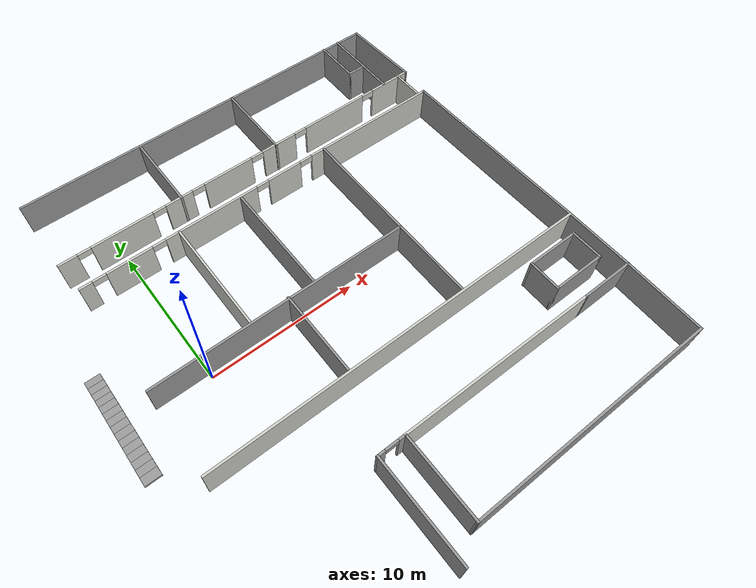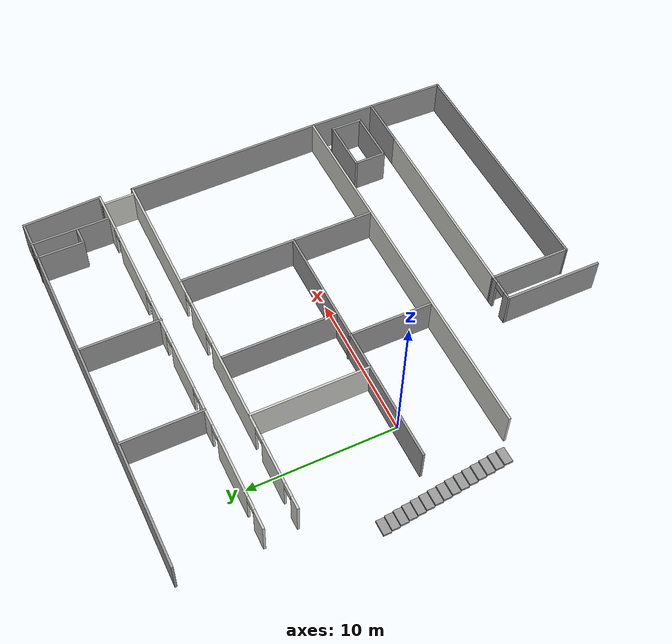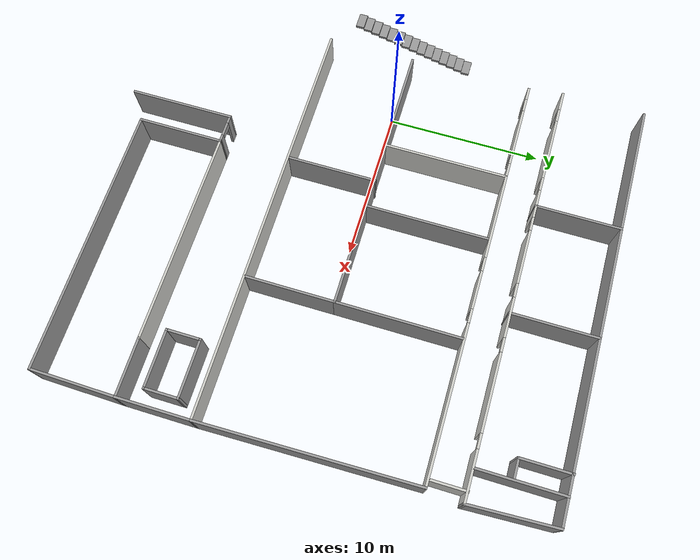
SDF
<sdf version="1.6">
 <model name="b1">
  <pose>-0.20488 -0.299258 0 0 -0 0</pose>
  <link name="Stairs_1">
   <visual name="Stairs_1_Visual_0">
    <pose>-5.30683 4.12843 0.083333 0 -0 0</pose>
    <geometry><box><size>1 0.5427 0.166667</size></box></geometry>
    <material>
     <script><uri>file://media/materials/scripts/gazebo.material</uri><name>Gazebo/Grey</name></script>
     <ambient>1 1 1 1</ambient>
    </material>
   </visual>
   <collision name="Stairs_1_Collision_0">
    <geometry><box><size>1 0.5427 0.166667</size></box></geometry>
    <pose>-5.30683 4.12843 0.083333 0 -0 0</pose>
   </collision>
   <visual name="Stairs_1_Visual_1">
    <pose>-5.30683 3.58574 0.25 0 -0 0</pose>
    <geometry><box><size>1 0.5427 0.166667</size></box></geometry>
    <material>
     <script><uri>file://media/materials/scripts/gazebo.material</uri><name>Gazebo/Grey</name></script>
     <ambient>1 1 1 1</ambient>
    </material>
   </visual>
   <collision name="Stairs_1_Collision_1">
    <geometry><box><size>1 0.5427 0.166667</size></box></geometry>
    <pose>-5.30683 3.58574 0.25 0 -0 0</pose>
   </collision>
   <visual name="Stairs_1_Visual_2">
    <pose>-5.30683 3.04304 0.416667 0 -0 0</pose>
    <geometry><box><size>1 0.5427 0.166667</size></box></geometry>
    <material>
     <script><uri>file://media/materials/scripts/gazebo.material</uri><name>Gazebo/Grey</name></script>
     <ambient>1 1 1 1</ambient>
    </material>
   </visual>
   <collision name="Stairs_1_Collision_2">
    <geometry><box><size>1 0.5427 0.166667</size></box></geometry>
    <pose>-5.30683 3.04304 0.416667 0 -0 0</pose>
   </collision>
   <visual name="Stairs_1_Visual_3">
    <pose>-5.30683 2.50034 0.583333 0 -0 0</pose>
    <geometry><box><size>1 0.5427 0.166667</size></box></geometry>
    <material>
     <script><uri>file://media/materials/scripts/gazebo.material</uri><name>Gazebo/Grey</name></script>
     <ambient>1 1 1 1</ambient>
    </material>
   </visual>
   <collision name="Stairs_1_Collision_3">
    <geometry><box><size>1 0.5427 0.166667</size></box></geometry>
    <pose>-5.30683 2.50034 0.583333 0 -0 0</pose>
   </collision>
   <visual name="Stairs_1_Visual_4">
    <pose>-5.30683 1.95764 0.75 0 -0 0</pose>
    <geometry><box><size>1 0.5427 0.166667</size></box></geometry>
    <material>
     <script><uri>file://media/materials/scripts/gazebo.material</uri><name>Gazebo/Grey</name></script>
     <ambient>1 1 1 1</ambient>
    </material>
   </visual>
   <collision name="Stairs_1_Collision_4">
    <geometry><box><size>1 0.5427 0.166667</size></box></geometry>
    <pose>-5.30683 1.95764 0.75 0 -0 0</pose>
   </collision>
   <visual name="Stairs_1_Visual_5">
    <pose>-5.30683 1.41494 0.916667 0 -0 0</pose>
    <geometry><box><size>1 0.5427 0.166667</size></box></geometry>
    <material>
     <script><uri>file://media/materials/scripts/gazebo.material</uri><name>Gazebo/Grey</name></script>
     <ambient>1 1 1 1</ambient>
    </material>
   </visual>
   <collision name="Stairs_1_Collision_5">
    <geometry><box><size>1 0.5427 0.166667</size></box></geometry>
    <pose>-5.30683 1.41494 0.916667 0 -0 0</pose>
   </collision>
   <visual name="Stairs_1_Visual_6">
    <pose>-5.30683 0.872236 1.08333 0 -0 0</pose>
    <geometry><box><size>1 0.5427 0.166667</size></box></geometry>
    <material>
     <script><uri>file://media/materials/scripts/gazebo.material</uri><name>Gazebo/Grey</name></script>
     <ambient>1 1 1 1</ambient>
    </material>
   </visual>
   <collision name="Stairs_1_Collision_6">
    <geometry><box><size>1 0.5427 0.166667</size></box></geometry>
    <pose>-5.30683 0.872236 1.08333 0 -0 0</pose>
   </collision>
   <visual name="Stairs_1_Visual_7">
    <pose>-5.30683 0.329537 1.25 0 -0 0</pose>
    <geometry><box><size>1 0.5427 0.166667</size></box></geometry>
    <material>
     <script><uri>file://media/materials/scripts/gazebo.material</uri><name>Gazebo/Grey</name></script>
     <ambient>1 1 1 1</ambient>
    </material>
   </visual>
   <collision name="Stairs_1_Collision_7">
    <geometry><box><size>1 0.5427 0.166667</size></box></geometry>
    <pose>-5.30683 0.329537 1.25 0 -0 0</pose>
   </collision>
   <visual name="Stairs_1_Visual_8">
    <pose>-5.30683 -0.213163 1.41667 0 -0 0</pose>
    <geometry><box><size>1 0.5427 0.166667</size></box></geometry>
    <material>
     <script><uri>file://media/materials/scripts/gazebo.material</uri><name>Gazebo/Grey</name></script>
     <ambient>1 1 1 1</ambient>
    </material>
   </visual>
   <collision name="Stairs_1_Collision_8">
    <geometry><box><size>1 0.5427 0.166667</size></box></geometry>
    <pose>-5.30683 -0.213163 1.41667 0 -0 0</pose>
   </collision>
   <visual name="Stairs_1_Visual_9">
    <pose>-5.30683 -0.755863 1.58333 0 -0 0</pose>
    <geometry><box><size>1 0.5427 0.166667</size></box></geometry>
    <material>
     <script><uri>file://media/materials/scripts/gazebo.material</uri><name>Gazebo/Grey</name></script>
     <ambient>1 1 1 1</ambient>
    </material>
   </visual>
   <collision name="Stairs_1_Collision_9">
    <geometry><box><size>1 0.5427 0.166667</size></box></geometry>
    <pose>-5.30683 -0.755863 1.58333 0 -0 0</pose>
   </collision>
   <visual name="Stairs_1_Visual_10">
    <pose>-5.30683 -1.29856 1.75 0 -0 0</pose>
    <geometry><box><size>1 0.5427 0.166667</size></box></geometry>
    <material>
     <script><uri>file://media/materials/scripts/gazebo.material</uri><name>Gazebo/Grey</name></script>
     <ambient>1 1 1 1</ambient>
    </material>
   </visual>
   <collision name="Stairs_1_Collision_10">
    <geometry><box><size>1 0.5427 0.166667</size></box></geometry>
    <pose>-5.30683 -1.29856 1.75 0 -0 0</pose>
   </collision>
   <visual name="Stairs_1_Visual_11">
    <pose>-5.30683 -1.84126 1.91667 0 -0 0</pose>
    <geometry><box><size>1 0.5427 0.166667</size></box></geometry>
    <material>
     <script><uri>file://media/materials/scripts/gazebo.material</uri><name>Gazebo/Grey</name></script>
     <ambient>1 1 1 1</ambient>
    </material>
   </visual>
   <collision name="Stairs_1_Collision_11">
    <geometry><box><size>1 0.5427 0.166667</size></box></geometry>
    <pose>-5.30683 -1.84126 1.91667 0 -0 0</pose>
   </collision>
   <visual name="Stairs_1_Visual_12">
    <pose>-5.30683 -2.38396 2.08333 0 -0 0</pose>
    <geometry><box><size>1 0.5427 0.166667</size></box></geometry>
    <material>
     <script><uri>file://media/materials/scripts/gazebo.material</uri><name>Gazebo/Grey</name></script>
     <ambient>1 1 1 1</ambient>
    </material>
   </visual>
   <collision name="Stairs_1_Collision_12">
    <geometry><box><size>1 0.5427 0.166667</size></box></geometry>
    <pose>-5.30683 -2.38396 2.08333 0 -0 0</pose>
   </collision>
   <visual name="Stairs_1_Visual_13">
    <pose>-5.30683 -2.92666 2.25 0 -0 0</pose>
    <geometry><box><size>1 0.5427 0.166667</size></box></geometry>
    <material>
     <script><uri>file://media/materials/scripts/gazebo.material</uri><name>Gazebo/Grey</name></script>
     <ambient>1 1 1 1</ambient>
    </material>
   </visual>
   <collision name="Stairs_1_Collision_13">
    <geometry><box><size>1 0.5427 0.166667</size></box></geometry>
    <pose>-5.30683 -2.92666 2.25 0 -0 0</pose>
   </collision>
   <visual name="Stairs_1_Visual_14">
    <pose>-5.30683 -3.46936 2.41667 0 -0 0</pose>
    <geometry><box><size>1 0.5427 0.166667</size></box></geometry>
    <material>
     <script><uri>file://media/materials/scripts/gazebo.material</uri><name>Gazebo/Grey</name></script>
     <ambient>1 1 1 1</ambient>
    </material>
   </visual>
   <collision name="Stairs_1_Collision_14">
    <geometry><box><size>1 0.5427 0.166667</size></box></geometry>
    <pose>-5.30683 -3.46936 2.41667 0 -0 0</pose>
   </collision>
  </link>
  <link name="Wall_101">
   <collision name="Wall_101_Collision">
    <geometry><box><size>7.75 0.15 2.5</size></box></geometry>
    <pose>0 0 1.25 0 -0 0</pose>
   </collision>
   <visual name="Wall_101_Visual">
    <pose>0 0 1.25 0 -0 0</pose>
    <geometry><box><size>7.75 0.15 2.5</size></box></geometry>
    <material>
     <script><uri>file://media/materials/scripts/gazebo.material</uri><name>Gazebo/Grey</name></script>
     <ambient>1 1 1 1</ambient>
    </material>
   </visual>
   <pose>7.82846 4.59998 0 0 0 -1.5708</pose>
  </link>
  <link name="Wall_103">
   <collision name="Wall_103_Collision">
    <geometry><box><size>5.75 0.15 2.5</size></box></geometry>
    <pose>0 0 1.25 0 -0 0</pose>
   </collision>
   <visual name="Wall_103_Visual">
    <pose>0 0 1.25 0 -0 0</pose>
    <geometry><box><size>5.75 0.15 2.5</size></box></geometry>
    <material>
     <script><uri>file://media/materials/scripts/gazebo.material</uri><name>Gazebo/Grey</name></script>
     <ambient>1 1 1 1</ambient>
    </material>
   </visual>
   <pose>14.3596 -2.15208 0 0 0 -1.5708</pose>
  </link>
  <link name="Wall_105">
   <collision name="Wall_105_Collision">
    <geometry><box><size>5.75 0.15 2.5</size></box></geometry>
    <pose>0 0 1.25 0 -0 0</pose>
   </collision>
   <visual name="Wall_105_Visual">
    <pose>0 0 1.25 0 -0 0</pose>
    <geometry><box><size>5.75 0.15 2.5</size></box></geometry>
    <material>
     <script><uri>file://media/materials/scripts/gazebo.material</uri><name>Gazebo/Grey</name></script>
     <ambient>1 1 1 1</ambient>
    </material>
   </visual>
   <pose>6.01579 -2.07494 0 0 0 -1.5708</pose>
  </link>
  <link name="Wall_11">
   <collision name="Wall_11_Collision">
    <geometry><box><size>6.75 0.15 2.5</size></box></geometry>
    <pose>0 0 1.25 0 -0 0</pose>
   </collision>
   <visual name="Wall_11_Visual">
    <pose>0 0 1.25 0 -0 0</pose>
    <geometry><box><size>6.75 0.15 2.5</size></box></geometry>
    <material>
     <script><uri>file://media/materials/scripts/gazebo.material</uri><name>Gazebo/Grey</name></script>
     <ambient>1 1 1 1</ambient>
    </material>
   </visual>
   <pose>4.30011 -12.8555 0 0 0 -1.5708</pose>
  </link>
  <link name="Wall_15">
   <collision name="Wall_15_Collision">
    <geometry><box><size>5.58386 0.15 2.5</size></box></geometry>
    <pose>0 0 1.25 0 -0 0</pose>
   </collision>
   <visual name="Wall_15_Visual">
    <pose>0 0 1.25 0 -0 0</pose>
    <geometry><box><size>5.58386 0.15 2.5</size></box></geometry>
    <material>
     <script><uri>file://media/materials/scripts/gazebo.material</uri><name>Gazebo/Grey</name></script>
     <ambient>1 1 1 1</ambient>
    </material>
   </visual>
   <pose>6.14467 -12.2724 0 0 -0 1.56879</pose>
  </link>
  <link name="Wall_16">
   <collision name="Wall_16_Collision">
    <geometry><box><size>13.7394 0.15 2.5</size></box></geometry>
    <pose>0 0 1.25 0 -0 0</pose>
   </collision>
   <visual name="Wall_16_Visual">
    <pose>0 0 1.25 0 -0 0</pose>
    <geometry><box><size>13.7394 0.15 2.5</size></box></geometry>
    <material>
     <script><uri>file://media/materials/scripts/gazebo.material</uri><name>Gazebo/CeilingTiled</name></script>
     <ambient>1 1 1 1</ambient>
    </material>
   </visual>
   <pose>12.9447 -9.59742 0 0 0 -0.00617</pose>
  </link>
  <link name="Wall_17">
   <collision name="Wall_17_Collision">
    <geometry><box><size>3.75 0.15 2.5</size></box></geometry>
    <pose>0 0 1.25 0 -0 0</pose>
   </collision>
   <visual name="Wall_17_Visual">
    <pose>0 0 1.25 0 -0 0</pose>
    <geometry><box><size>3.75 0.15 2.5</size></box></geometry>
    <material>
     <script><uri>file://media/materials/scripts/gazebo.material</uri><name>Gazebo/Grey</name></script>
     <ambient>1 1 1 1</ambient>
    </material>
   </visual>
   <pose>21.5392 -9.63935 0 0 -0 0</pose>
  </link>
  <link name="Wall_18">
   <collision name="Wall_18_Collision">
    <geometry><box><size>4.75 0.15 2.5</size></box></geometry>
    <pose>0 0 1.25 0 -0 0</pose>
   </collision>
   <visual name="Wall_18_Visual">
    <pose>0 0 1.25 0 -0 0</pose>
    <geometry><box><size>4.75 0.15 2.5</size></box></geometry>
    <material>
     <script><uri>file://media/materials/scripts/gazebo.material</uri><name>Gazebo/Grey</name></script>
     <ambient>1 1 1 1</ambient>
    </material>
   </visual>
   <pose>23.3392 -7.33935 0 0 -0 1.5708</pose>
  </link>
  <link name="Wall_19">
   <collision name="Wall_19_Collision">
    <geometry><box><size>26.75 0.15 2.5</size></box></geometry>
    <pose>0 0 1.25 0 -0 0</pose>
   </collision>
   <visual name="Wall_19_Visual">
    <pose>0 0 1.25 0 -0 0</pose>
    <geometry><box><size>26.75 0.15 2.5</size></box></geometry>
    <material>
     <script><uri>file://media/materials/scripts/gazebo.material</uri><name>Gazebo/CeilingTiled</name></script>
     <ambient>1 1 1 1</ambient>
    </material>
   </visual>
   <pose>10.0392 -5.03935 0 0 -0 3.14159</pose>
  </link>
  <link name="Wall_22">
   <pose>9.91422 8.56065 0 0 -0 0</pose>
   <visual name="Wall_22_Visual_0">
    <pose>-12.8162 0 1.25 0 -0 0</pose>
    <geometry><box><size>0.867558 0.15 2.5</size></box></geometry>
    <material>
     <script><uri>file://media/materials/scripts/gazebo.material</uri><name>Gazebo/CeilingTiled</name></script>
     <ambient>1 1 1 1</ambient>
    </material>
   </visual>
   <collision name="Wall_22_Collision_0">
    <geometry><box><size>0.867558 0.15 2.5</size></box></geometry>
    <pose>-12.8162 0 1.25 0 -0 0</pose>
   </collision>
   <visual name="Wall_22_Visual_1">
    <pose>-9.93193 0 1.25 0 -0 0</pose>
    <geometry><box><size>3.10102 0.15 2.5</size></box></geometry>
    <material>
     <script><uri>file://media/materials/scripts/gazebo.material</uri><name>Gazebo/CeilingTiled</name></script>
     <ambient>1 1 1 1</ambient>
    </material>
   </visual>
   <collision name="Wall_22_Collision_1">
    <geometry><box><size>3.10102 0.15 2.5</size></box></geometry>
    <pose>-9.93193 0 1.25 0 -0 0</pose>
   </collision>
   <visual name="Wall_22_Visual_2">
    <pose>-4.16979 0 1.25 0 -0 0</pose>
    <geometry><box><size>6.62328 0.15 2.5</size></box></geometry>
    <material>
     <script><uri>file://media/materials/scripts/gazebo.material</uri><name>Gazebo/CeilingTiled</name></script>
     <ambient>1 1 1 1</ambient>
    </material>
   </visual>
   <collision name="Wall_22_Collision_2">
    <geometry><box><size>6.62328 0.15 2.5</size></box></geometry>
    <pose>-4.16979 0 1.25 0 -0 0</pose>
   </collision>
   <visual name="Wall_22_Visual_3">
    <pose>1.28459 0 1.25 0 -0 0</pose>
    <geometry><box><size>2.48548 0.15 2.5</size></box></geometry>
    <material>
     <script><uri>file://media/materials/scripts/gazebo.material</uri><name>Gazebo/CeilingTiled</name></script>
     <ambient>1 1 1 1</ambient>
    </material>
   </visual>
   <collision name="Wall_22_Collision_3">
    <geometry><box><size>2.48548 0.15 2.5</size></box></geometry>
    <pose>1.28459 0 1.25 0 -0 0</pose>
   </collision>
   <visual name="Wall_22_Visual_4">
    <pose>8.33867 0 1.25 0 -0 0</pose>
    <geometry><box><size>9.82267 0.15 2.5</size></box></geometry>
    <material>
     <script><uri>file://media/materials/scripts/gazebo.material</uri><name>Gazebo/CeilingTiled</name></script>
     <ambient>1 1 1 1</ambient>
    </material>
   </visual>
   <collision name="Wall_22_Collision_4">
    <geometry><box><size>9.82267 0.15 2.5</size></box></geometry>
    <pose>8.33867 0 1.25 0 -0 0</pose>
   </collision>
   <visual name="Wall_22_Visual_5">
    <pose>-11.9324 0 2.25 0 -0 0</pose>
    <geometry><box><size>0.9 0.15 0.5</size></box></geometry>
    <material>
     <script><uri>file://media/materials/scripts/gazebo.material</uri><name>Gazebo/CeilingTiled</name></script>
     <ambient>1 1 1 1</ambient>
    </material>
   </visual>
   <collision name="Wall_22_Collision_5">
    <geometry><box><size>0.9 0.15 0.5</size></box></geometry>
    <pose>-11.9324 0 2.25 0 -0 0</pose>
   </collision>
   <visual name="Wall_22_Visual_6">
    <pose>-7.93142 0 2.25 0 -0 0</pose>
    <geometry><box><size>0.9 0.15 0.5</size></box></geometry>
    <material>
     <script><uri>file://media/materials/scripts/gazebo.material</uri><name>Gazebo/CeilingTiled</name></script>
     <ambient>1 1 1 1</ambient>
    </material>
   </visual>
   <collision name="Wall_22_Collision_6">
    <geometry><box><size>0.9 0.15 0.5</size></box></geometry>
    <pose>-7.93142 0 2.25 0 -0 0</pose>
   </collision>
   <visual name="Wall_22_Visual_7">
    <pose>-0.408145 0 2.25 0 -0 0</pose>
    <geometry><box><size>0.9 0.15 0.5</size></box></geometry>
    <material>
     <script><uri>file://media/materials/scripts/gazebo.material</uri><name>Gazebo/CeilingTiled</name></script>
     <ambient>1 1 1 1</ambient>
    </material>
   </visual>
   <collision name="Wall_22_Collision_7">
    <geometry><box><size>0.9 0.15 0.5</size></box></geometry>
    <pose>-0.408145 0 2.25 0 -0 0</pose>
   </collision>
   <visual name="Wall_22_Visual_8">
    <pose>2.97733 0 2.25 0 -0 0</pose>
    <geometry><box><size>0.9 0.15 0.5</size></box></geometry>
    <material>
     <script><uri>file://media/materials/scripts/gazebo.material</uri><name>Gazebo/CeilingTiled</name></script>
     <ambient>1 1 1 1</ambient>
    </material>
   </visual>
   <collision name="Wall_22_Collision_8">
    <geometry><box><size>0.9 0.15 0.5</size></box></geometry>
    <pose>2.97733 0 2.25 0 -0 0</pose>
   </collision>
  </link>
  <link name="Wall_23">
   <collision name="Wall_23_Collision">
    <geometry><box><size>13.7523 0.15 2.5</size></box></geometry>
    <pose>0 0 1.25 0 -0 0</pose>
   </collision>
   <visual name="Wall_23_Visual">
    <pose>0 0 1.25 0 -0 0</pose>
    <geometry><box><size>13.7523 0.15 2.5</size></box></geometry>
    <material>
     <script><uri>file://media/materials/scripts/gazebo.material</uri><name>Gazebo/Grey</name></script>
     <ambient>1 1 1 1</ambient>
    </material>
   </visual>
   <pose>23.2142 1.76065 0 0 0 -1.55242</pose>
  </link>
  <link name="Wall_3">
   <pose>9.87983 10.7859 0 0 -0 0</pose>
   <visual name="Wall_3_Visual_0">
    <pose>-12.8556 0 1.25 0 -0 0</pose>
    <geometry><box><size>1.28873 0.15 2.5</size></box></geometry>
    <material>
     <script><uri>file://media/materials/scripts/gazebo.material</uri><name>Gazebo/CeilingTiled</name></script>
     <ambient>1 1 1 1</ambient>
    </material>
   </visual>
   <collision name="Wall_3_Collision_0">
    <geometry><box><size>1.28873 0.15 2.5</size></box></geometry>
    <pose>-12.8556 0 1.25 0 -0 0</pose>
   </collision>
   <visual name="Wall_3_Visual_1">
    <pose>-9.19651 0 1.25 0 -0 0</pose>
    <geometry><box><size>4.22951 0.15 2.5</size></box></geometry>
    <material>
     <script><uri>file://media/materials/scripts/gazebo.material</uri><name>Gazebo/CeilingTiled</name></script>
     <ambient>1 1 1 1</ambient>
    </material>
   </visual>
   <collision name="Wall_3_Collision_1">
    <geometry><box><size>4.22951 0.15 2.5</size></box></geometry>
    <pose>-9.19651 0 1.25 0 -0 0</pose>
   </collision>
   <visual name="Wall_3_Visual_2">
    <pose>-5.2126 0 1.25 0 -0 0</pose>
    <geometry><box><size>1.93833 0.15 2.5</size></box></geometry>
    <material>
     <script><uri>file://media/materials/scripts/gazebo.material</uri><name>Gazebo/CeilingTiled</name></script>
     <ambient>1 1 1 1</ambient>
    </material>
   </visual>
   <collision name="Wall_3_Collision_2">
    <geometry><box><size>1.93833 0.15 2.5</size></box></geometry>
    <pose>-5.2126 0 1.25 0 -0 0</pose>
   </collision>
   <visual name="Wall_3_Visual_3">
    <pose>-1.55355 0 1.25 0 -0 0</pose>
    <geometry><box><size>3.57977 0.15 2.5</size></box></geometry>
    <material>
     <script><uri>file://media/materials/scripts/gazebo.material</uri><name>Gazebo/CeilingTiled</name></script>
     <ambient>1 1 1 1</ambient>
    </material>
   </visual>
   <collision name="Wall_3_Collision_3">
    <geometry><box><size>3.57977 0.15 2.5</size></box></geometry>
    <pose>-1.55355 0 1.25 0 -0 0</pose>
   </collision>
   <visual name="Wall_3_Visual_4">
    <pose>2.43037 0 1.25 0 -0 0</pose>
    <geometry><box><size>2.58807 0.15 2.5</size></box></geometry>
    <material>
     <script><uri>file://media/materials/scripts/gazebo.material</uri><name>Gazebo/CeilingTiled</name></script>
     <ambient>1 1 1 1</ambient>
    </material>
   </visual>
   <collision name="Wall_3_Collision_4">
    <geometry><box><size>2.58807 0.15 2.5</size></box></geometry>
    <pose>2.43037 0 1.25 0 -0 0</pose>
   </collision>
   <visual name="Wall_3_Visual_5">
    <pose>7.04693 0 1.25 0 -0 0</pose>
    <geometry><box><size>4.84505 0.15 2.5</size></box></geometry>
    <material>
     <script><uri>file://media/materials/scripts/gazebo.material</uri><name>Gazebo/CeilingTiled</name></script>
     <ambient>1 1 1 1</ambient>
    </material>
   </visual>
   <collision name="Wall_3_Collision_5">
    <geometry><box><size>4.84505 0.15 2.5</size></box></geometry>
    <pose>7.04693 0 1.25 0 -0 0</pose>
   </collision>
   <visual name="Wall_3_Visual_6">
    <pose>11.9347 0 1.25 0 -0 0</pose>
    <geometry><box><size>3.13054 0.15 2.5</size></box></geometry>
    <material>
     <script><uri>file://media/materials/scripts/gazebo.material</uri><name>Gazebo/CeilingTiled</name></script>
     <ambient>1 1 1 1</ambient>
    </material>
   </visual>
   <collision name="Wall_3_Collision_6">
    <geometry><box><size>3.13054 0.15 2.5</size></box></geometry>
    <pose>11.9347 0 1.25 0 -0 0</pose>
   </collision>
   <visual name="Wall_3_Visual_7">
    <pose>-11.7613 0 2.25 0 -0 0</pose>
    <geometry><box><size>0.9 0.15 0.5</size></box></geometry>
    <material>
     <script><uri>file://media/materials/scripts/gazebo.material</uri><name>Gazebo/CeilingTiled</name></script>
     <ambient>1 1 1 1</ambient>
    </material>
   </visual>
   <collision name="Wall_3_Collision_7">
    <geometry><box><size>0.9 0.15 0.5</size></box></geometry>
    <pose>-11.7613 0 2.25 0 -0 0</pose>
   </collision>
   <visual name="Wall_3_Visual_8">
    <pose>-6.63176 0 2.25 0 -0 0</pose>
    <geometry><box><size>0.9 0.15 0.5</size></box></geometry>
    <material>
     <script><uri>file://media/materials/scripts/gazebo.material</uri><name>Gazebo/CeilingTiled</name></script>
     <ambient>1 1 1 1</ambient>
    </material>
   </visual>
   <collision name="Wall_3_Collision_8">
    <geometry><box><size>0.9 0.15 0.5</size></box></geometry>
    <pose>-6.63176 0 2.25 0 -0 0</pose>
   </collision>
   <visual name="Wall_3_Visual_9">
    <pose>-3.79343 0 2.25 0 -0 0</pose>
    <geometry><box><size>0.9 0.15 0.5</size></box></geometry>
    <material>
     <script><uri>file://media/materials/scripts/gazebo.material</uri><name>Gazebo/CeilingTiled</name></script>
     <ambient>1 1 1 1</ambient>
    </material>
   </visual>
   <collision name="Wall_3_Collision_9">
    <geometry><box><size>0.9 0.15 0.5</size></box></geometry>
    <pose>-3.79343 0 2.25 0 -0 0</pose>
   </collision>
   <visual name="Wall_3_Visual_10">
    <pose>0.686339 0 2.25 0 -0 0</pose>
    <geometry><box><size>0.9 0.15 0.5</size></box></geometry>
    <material>
     <script><uri>file://media/materials/scripts/gazebo.material</uri><name>Gazebo/CeilingTiled</name></script>
     <ambient>1 1 1 1</ambient>
    </material>
   </visual>
   <collision name="Wall_3_Collision_10">
    <geometry><box><size>0.9 0.15 0.5</size></box></geometry>
    <pose>0.686339 0 2.25 0 -0 0</pose>
   </collision>
   <visual name="Wall_3_Visual_11">
    <pose>4.17441 0 2.25 0 -0 0</pose>
    <geometry><box><size>0.9 0.15 0.5</size></box></geometry>
    <material>
     <script><uri>file://media/materials/scripts/gazebo.material</uri><name>Gazebo/CeilingTiled</name></script>
     <ambient>1 1 1 1</ambient>
    </material>
   </visual>
   <collision name="Wall_3_Collision_11">
    <geometry><box><size>0.9 0.15 0.5</size></box></geometry>
    <pose>4.17441 0 2.25 0 -0 0</pose>
   </collision>
   <visual name="Wall_3_Visual_12">
    <pose>9.91946 0 2.25 0 -0 0</pose>
    <geometry><box><size>0.9 0.15 0.5</size></box></geometry>
    <material>
     <script><uri>file://media/materials/scripts/gazebo.material</uri><name>Gazebo/CeilingTiled</name></script>
     <ambient>1 1 1 1</ambient>
    </material>
   </visual>
   <collision name="Wall_3_Collision_12">
    <geometry><box><size>0.9 0.15 0.5</size></box></geometry>
    <pose>9.91946 0 2.25 0 -0 0</pose>
   </collision>
  </link>
  <link name="Wall_46">
   <pose>5.22511 -9.5555 0 0 -0 0</pose>
   <visual name="Wall_46_Visual_0">
    <pose>-0.714563 0 1.25 0 -0 0</pose>
    <geometry><box><size>0.570874 0.15 2.5</size></box></geometry>
    <material>
     <script><uri>file://media/materials/scripts/gazebo.material</uri><name>Gazebo/Grey</name></script>
     <ambient>1 1 1 1</ambient>
    </material>
   </visual>
   <collision name="Wall_46_Collision_0">
    <geometry><box><size>0.570874 0.15 2.5</size></box></geometry>
    <pose>-0.714563 0 1.25 0 -0 0</pose>
   </collision>
   <visual name="Wall_46_Visual_1">
    <pose>0.735437 0 1.25 0 -0 0</pose>
    <geometry><box><size>0.529126 0.15 2.5</size></box></geometry>
    <material>
     <script><uri>file://media/materials/scripts/gazebo.material</uri><name>Gazebo/Grey</name></script>
     <ambient>1 1 1 1</ambient>
    </material>
   </visual>
   <collision name="Wall_46_Collision_1">
    <geometry><box><size>0.529126 0.15 2.5</size></box></geometry>
    <pose>0.735437 0 1.25 0 -0 0</pose>
   </collision>
   <visual name="Wall_46_Visual_2">
    <pose>0.020874 0 2.25 0 -0 0</pose>
    <geometry><box><size>0.9 0.15 0.5</size></box></geometry>
    <material>
     <script><uri>file://media/materials/scripts/gazebo.material</uri><name>Gazebo/Grey</name></script>
     <ambient>1 1 1 1</ambient>
    </material>
   </visual>
   <collision name="Wall_46_Collision_2">
    <geometry><box><size>0.9 0.15 0.5</size></box></geometry>
    <pose>0.020874 0 2.25 0 -0 0</pose>
   </collision>
  </link>
  <link name="Wall_48">
   <collision name="Wall_48_Collision">
    <geometry><box><size>2.25 0.15 2.5</size></box></geometry>
    <pose>0 0 1.25 0 -0 0</pose>
   </collision>
   <visual name="Wall_48_Visual">
    <pose>0 0 1.25 0 -0 0</pose>
    <geometry><box><size>2.25 0.15 2.5</size></box></geometry>
    <material>
     <script><uri>file://media/materials/scripts/gazebo.material</uri><name>Gazebo/Grey</name></script>
     <ambient>1 1 1 1</ambient>
    </material>
   </visual>
   <pose>18.8012 -7.22085 0 0 0 -1.5708</pose>
  </link>
  <link name="Wall_49">
   <collision name="Wall_49_Collision">
    <geometry><box><size>3.75 0.15 2.5</size></box></geometry>
    <pose>0 0 1.25 0 -0 0</pose>
   </collision>
   <visual name="Wall_49_Visual">
    <pose>0 0 1.25 0 -0 0</pose>
    <geometry><box><size>3.75 0.15 2.5</size></box></geometry>
    <material>
     <script><uri>file://media/materials/scripts/gazebo.material</uri><name>Gazebo/Grey</name></script>
     <ambient>1 1 1 1</ambient>
    </material>
   </visual>
   <pose>20.6012 -8.27085 0 0 -0 0</pose>
  </link>
  <link name="Wall_50">
   <collision name="Wall_50_Collision">
    <geometry><box><size>2.25 0.15 2.5</size></box></geometry>
    <pose>0 0 1.25 0 -0 0</pose>
   </collision>
   <visual name="Wall_50_Visual">
    <pose>0 0 1.25 0 -0 0</pose>
    <geometry><box><size>2.25 0.15 2.5</size></box></geometry>
    <material>
     <script><uri>file://media/materials/scripts/gazebo.material</uri><name>Gazebo/Grey</name></script>
     <ambient>1 1 1 1</ambient>
    </material>
   </visual>
   <pose>22.4012 -7.22085 0 0 -0 1.5708</pose>
  </link>
  <link name="Wall_51">
   <collision name="Wall_51_Collision">
    <geometry><box><size>3.75 0.15 2.5</size></box></geometry>
    <pose>0 0 1.25 0 -0 0</pose>
   </collision>
   <visual name="Wall_51_Visual">
    <pose>0 0 1.25 0 -0 0</pose>
    <geometry><box><size>3.75 0.15 2.5</size></box></geometry>
    <material>
     <script><uri>file://media/materials/scripts/gazebo.material</uri><name>Gazebo/Grey</name></script>
     <ambient>1 1 1 1</ambient>
    </material>
   </visual>
   <pose>20.6012 -6.17085 0 0 -0 3.14159</pose>
  </link>
  <link name="Wall_53">
   <collision name="Wall_53_Collision">
    <geometry><box><size>17.25 0.15 2.5</size></box></geometry>
    <pose>0 0 1.25 0 -0 0</pose>
   </collision>
   <visual name="Wall_53_Visual">
    <pose>0 0 1.25 0 -0 0</pose>
    <geometry><box><size>17.25 0.15 2.5</size></box></geometry>
    <material>
     <script><uri>file://media/materials/scripts/gazebo.material</uri><name>Gazebo/Grey</name></script>
     <ambient>1 1 1 1</ambient>
    </material>
   </visual>
   <pose>14.6892 -14.9893 0 0 -0 0</pose>
  </link>
  <link name="Wall_54">
   <collision name="Wall_54_Collision">
    <geometry><box><size>5.50093 0.15 2.5</size></box></geometry>
    <pose>0 0 1.25 0 -0 0</pose>
   </collision>
   <visual name="Wall_54_Visual">
    <pose>0 0 1.25 0 -0 0</pose>
    <geometry><box><size>5.50093 0.15 2.5</size></box></geometry>
    <material>
     <script><uri>file://media/materials/scripts/gazebo.material</uri><name>Gazebo/Grey</name></script>
     <ambient>1 1 1 1</ambient>
    </material>
   </visual>
   <pose>23.2892 -12.3143 0 0 -0 1.55211</pose>
  </link>
  <link name="Wall_56">
   <collision name="Wall_56_Collision">
    <geometry><box><size>26.75 0.15 2.5</size></box></geometry>
    <pose>0 0 1.25 0 -0 0</pose>
   </collision>
   <visual name="Wall_56_Visual">
    <pose>0 0 1.25 0 -0 0</pose>
    <geometry><box><size>26.75 0.15 2.5</size></box></geometry>
    <material>
     <script><uri>file://media/materials/scripts/gazebo.material</uri><name>Gazebo/Grey</name></script>
     <ambient>1 1 1 1</ambient>
    </material>
   </visual>
   <pose>9.75483 16.1359 0 0 -0 0</pose>
  </link>
  <link name="Wall_57">
   <collision name="Wall_57_Collision">
    <geometry><box><size>5.50584 0.15 2.5</size></box></geometry>
    <pose>0 0 1.25 0 -0 0</pose>
   </collision>
   <visual name="Wall_57_Visual">
    <pose>0 0 1.25 0 -0 0</pose>
    <geometry><box><size>5.50584 0.15 2.5</size></box></geometry>
    <material>
     <script><uri>file://media/materials/scripts/gazebo.material</uri><name>Gazebo/Grey</name></script>
     <ambient>1 1 1 1</ambient>
    </material>
   </visual>
   <pose>23.1798 13.4609 0 0 0 -1.5241</pose>
  </link>
  <link name="Wall_59">
   <collision name="Wall_59_Collision">
    <geometry><box><size>2.25 0.15 2.5</size></box></geometry>
    <pose>0 0 1.25 0 -0 0</pose>
   </collision>
   <visual name="Wall_59_Visual">
    <pose>0 0 1.25 0 -0 0</pose>
    <geometry><box><size>2.25 0.15 2.5</size></box></geometry>
    <material>
     <script><uri>file://media/materials/scripts/gazebo.material</uri><name>Gazebo/CeilingTiled</name></script>
     <ambient>1 1 1 1</ambient>
    </material>
   </visual>
   <pose>22.6131 9.77011 0 0 0 -1.5708</pose>
  </link>
  <link name="Wall_87">
   <collision name="Wall_87_Collision">
    <geometry><box><size>5.5 0.15 2.5</size></box></geometry>
    <pose>0 0 1.25 0 -0 0</pose>
   </collision>
   <visual name="Wall_87_Visual">
    <pose>0 0 1.25 0 -0 0</pose>
    <geometry><box><size>5.5 0.15 2.5</size></box></geometry>
    <material>
     <script><uri>file://media/materials/scripts/gazebo.material</uri><name>Gazebo/Grey</name></script>
     <ambient>1 1 1 1</ambient>
    </material>
   </visual>
   <pose>4.83465 13.4478 0 0 0 -1.5708</pose>
  </link>
  <link name="Wall_89">
   <collision name="Wall_89_Collision">
    <geometry><box><size>5.5 0.15 2.5</size></box></geometry>
    <pose>0 0 1.25 0 -0 0</pose>
   </collision>
   <visual name="Wall_89_Visual">
    <pose>0 0 1.25 0 -0 0</pose>
    <geometry><box><size>5.5 0.15 2.5</size></box></geometry>
    <material>
     <script><uri>file://media/materials/scripts/gazebo.material</uri><name>Gazebo/Grey</name></script>
     <ambient>1 1 1 1</ambient>
    </material>
   </visual>
   <pose>12.0489 13.4194 0 0 -0 1.5708</pose>
  </link>
  <link name="Wall_91">
   <collision name="Wall_91_Collision">
    <geometry><box><size>5.5 0.15 2.5</size></box></geometry>
    <pose>0 0 1.25 0 -0 0</pose>
   </collision>
   <visual name="Wall_91_Visual">
    <pose>0 0 1.25 0 -0 0</pose>
    <geometry><box><size>5.5 0.15 2.5</size></box></geometry>
    <material>
     <script><uri>file://media/materials/scripts/gazebo.material</uri><name>Gazebo/Grey</name></script>
     <ambient>1 1 1 1</ambient>
    </material>
   </visual>
   <pose>21.306 13.4737 0 0 0 -1.5708</pose>
  </link>
  <link name="Wall_93">
   <collision name="Wall_93_Collision">
    <geometry><box><size>3.25 0.15 2.5</size></box></geometry>
    <pose>0 0 1.25 0 -0 0</pose>
   </collision>
   <visual name="Wall_93_Visual">
    <pose>0 0 1.25 0 -0 0</pose>
    <geometry><box><size>3.25 0.15 2.5</size></box></geometry>
    <material>
     <script><uri>file://media/materials/scripts/gazebo.material</uri><name>Gazebo/Grey</name></script>
     <ambient>1 1 1 1</ambient>
    </material>
   </visual>
   <pose>20.0648 14.6245 0 0 0 -1.5708</pose>
  </link>
  <link name="Wall_94">
   <collision name="Wall_94_Collision">
    <geometry><box><size>1.25 0.15 2.5</size></box></geometry>
    <pose>0 0 1.25 0 -0 0</pose>
   </collision>
   <visual name="Wall_94_Visual">
    <pose>0 0 1.25 0 -0 0</pose>
    <geometry><box><size>1.25 0.15 2.5</size></box></geometry>
    <material>
     <script><uri>file://media/materials/scripts/gazebo.material</uri><name>Gazebo/Grey</name></script>
     <ambient>1 1 1 1</ambient>
    </material>
   </visual>
   <pose>20.6148 13.0745 0 0 -0 0</pose>
  </link>
  <link name="Wall_96">
   <collision name="Wall_96_Collision">
    <geometry><box><size>17.75 0.15 2.5</size></box></geometry>
    <pose>0 0 1.25 0 -0 0</pose>
   </collision>
   <visual name="Wall_96_Visual">
    <pose>0 0 1.25 0 -0 0</pose>
    <geometry><box><size>17.75 0.15 2.5</size></box></geometry>
    <material>
     <script><uri>file://media/materials/scripts/gazebo.material</uri><name>Gazebo/Grey</name></script>
     <ambient>1 1 1 1</ambient>
    </material>
   </visual>
   <pose>5.55961 0.647922 0 0 -0 0</pose>
  </link>
  <link name="Wall_97">
   <collision name="Wall_97_Collision">
    <geometry><box><size>8 0.15 2.5</size></box></geometry>
    <pose>0 0 1.25 0 -0 0</pose>
   </collision>
   <visual name="Wall_97_Visual">
    <pose>0 0 1.25 0 -0 0</pose>
    <geometry><box><size>8 0.15 2.5</size></box></geometry>
    <material>
     <script><uri>file://media/materials/scripts/gazebo.material</uri><name>Gazebo/Grey</name></script>
     <ambient>1 1 1 1</ambient>
    </material>
   </visual>
   <pose>14.3596 4.57292 0 0 -0 1.5708</pose>
  </link>
  <link name="Wall_99">
   <collision name="Wall_99_Collision">
    <geometry><box><size>8 0.15 2.5</size></box></geometry>
    <pose>0 0 1.25 0 -0 0</pose>
   </collision>
   <visual name="Wall_99_Visual">
    <pose>0 0 1.25 0 -0 0</pose>
    <geometry><box><size>8 0.15 2.5</size></box></geometry>
    <material>
     <script><uri>file://media/materials/scripts/gazebo.material</uri><name>Gazebo/CeilingTiled</name></script>
     <ambient>1 1 1 1</ambient>
    </material>
   </visual>
   <pose>3.39321 4.59068 0 0 0 -1.5708</pose>
  </link>
  <static>1</static>
 </model>
</sdf>
